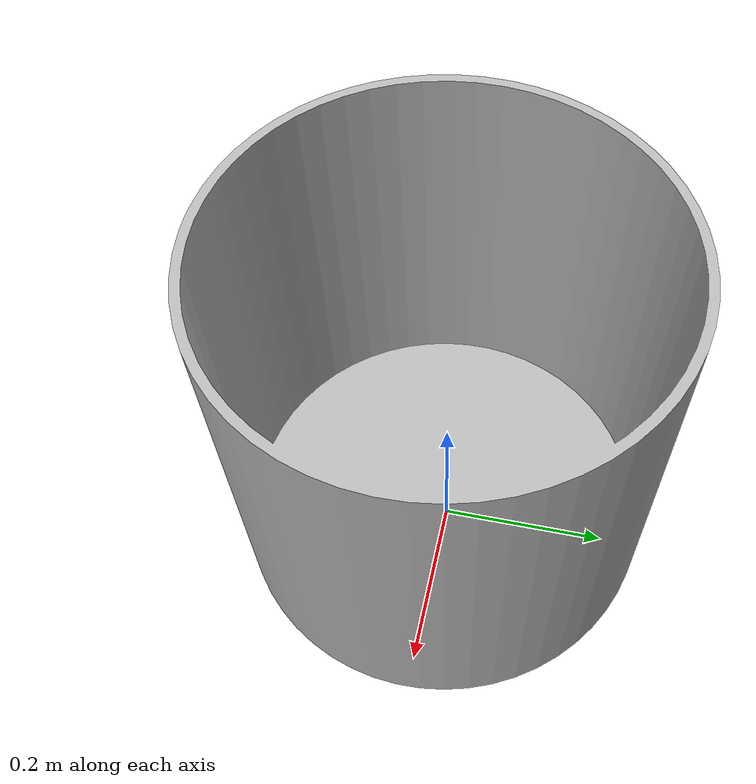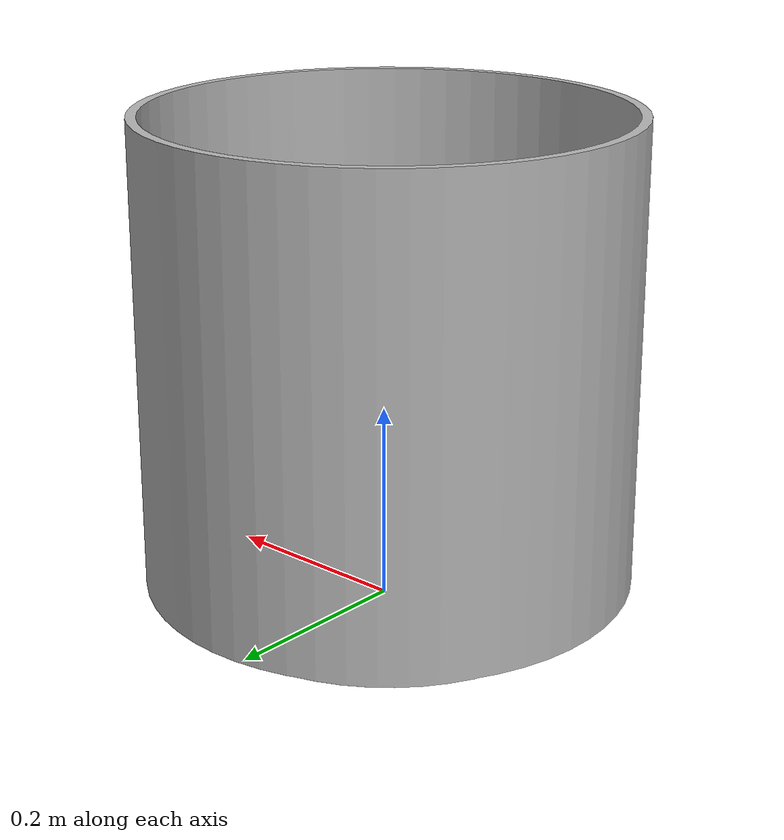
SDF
<?xml version='1.0'?>
<sdf version='1.7'>
  <model name='flower_pot'>
    <link name='link_0'>
      <pose>0 0 0 0 -0 0</pose>
      <gravity>1</gravity>
      <visual name='visual'>
        <pose>0 0 0 0 0 0</pose>
        <geometry>
          <mesh>
            <uri>model://flower_pot/meshes/flower_pot.dae</uri>
            <scale>1.35 1.35 1.35</scale>
          </mesh>
        </geometry>
        <transparency>0</transparency>
        <cast_shadows>0</cast_shadows>
      </visual>
      <collision name='collision'>
        <pose>0 0 0 0 0 0</pose>
        <geometry>
          <mesh>
            <uri>model://flower_pot/meshes/flower_pot.stl</uri>
            <scale>1.35 1.35 1.35</scale>
          </mesh>
        </geometry>
      </collision>
    </link>
    <static>0</static>
  </model>
</sdf>
